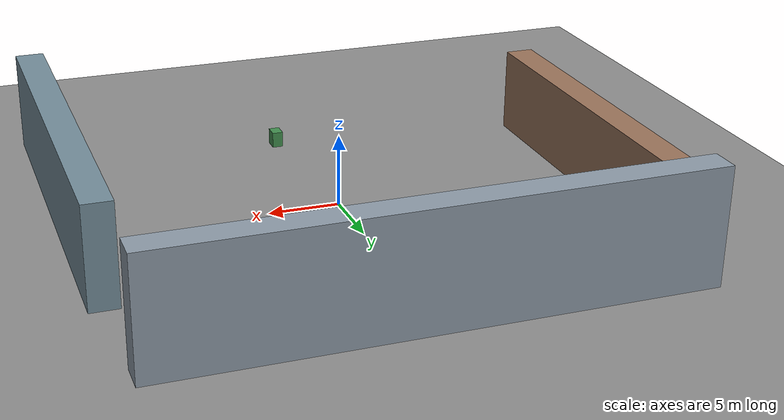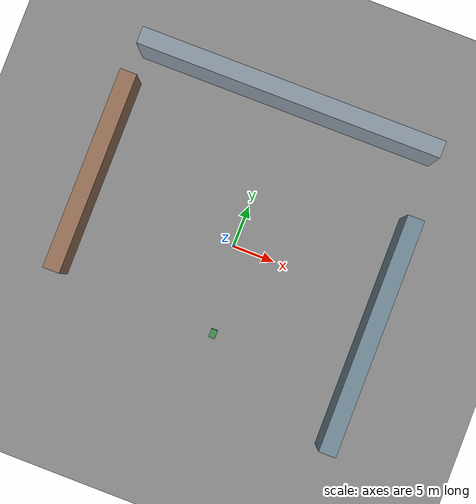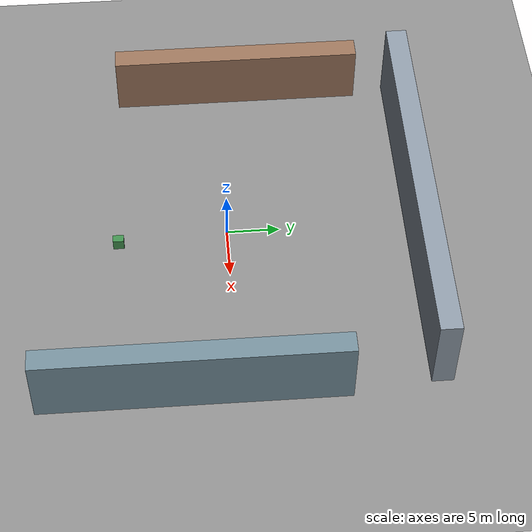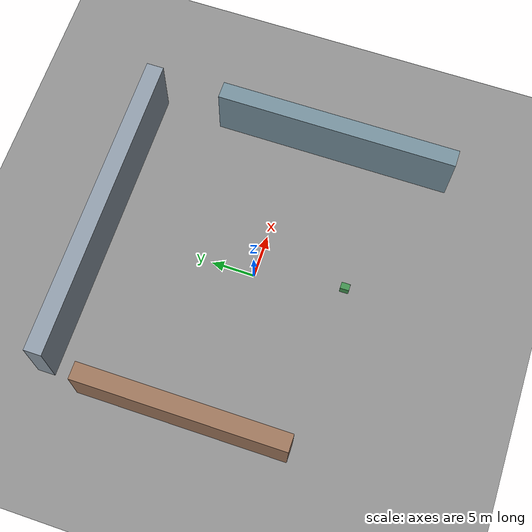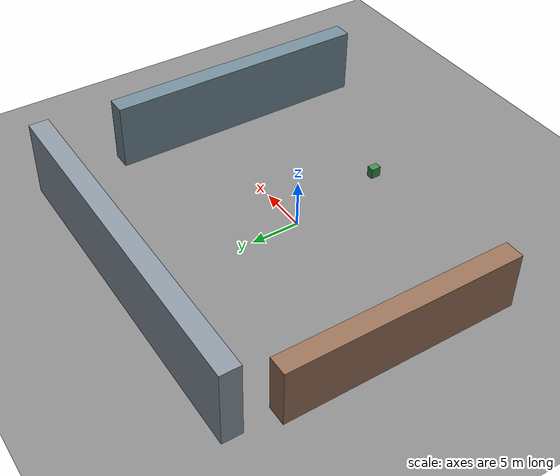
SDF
<?xml version="1.0"?>
<sdf version="1.6">
  <world name="outdoor_normal_low_0">
    <physics name="default_physics" type="ode">
      <real_time_update_rate>1000</real_time_update_rate>
      <max_step_size>0.001</max_step_size>
    </physics>
    <scene>
      <ambient>0.35750000000000004 0.35750000000000004 0.35750000000000004 1</ambient>
      <background>0.08 0.09 0.12 1</background>
      <shadows>true</shadows>
    </scene>
    <light name="sun" type="directional">
      <cast_shadows>true</cast_shadows>
      <pose>0 0 20 0 0 0</pose>
      <diffuse>0.65 0.65 0.65 1.0</diffuse>
      <specular>0.65 0.65 0.65 1.0</specular>
      <direction>-0.5 0.2 -1</direction>
    </light>
    <model name="ground_plane">
      <static>true</static>
      <link name="link">
        <collision name="collision"><geometry><plane><normal>0 0 1</normal><size>100 100</size></plane></geometry></collision>
        <visual name="visual">
          <geometry><plane><normal>0 0 1</normal><size>100 100</size></plane></geometry>
          <material><ambient>0.35 0.35 0.35 1</ambient><diffuse>0.55 0.55 0.55 1</diffuse></material>
        </visual>
      </link>
    </model>

    <model name="building_north">
      <static>true</static>
      <pose>0.0000 18.0000 4.0000 0 0 0</pose>
      <link name="link">
        <collision name="collision"><geometry><box><size>36 2 8</size></box></geometry></collision>
        <visual name="visual">
          <geometry><box><size>36 2 8</size></box></geometry>
          <material><ambient>0.55 0.60 0.65 1</ambient><diffuse>0.55 0.60 0.65 1</diffuse></material>
        </visual>
      </link>
    </model>

    <model name="building_west">
      <static>true</static>
      <pose>-18.0000 2.0000 3.0000 0 0 0</pose>
      <link name="link">
        <collision name="collision"><geometry><box><size>2 24 6</size></box></geometry></collision>
        <visual name="visual">
          <geometry><box><size>2 24 6</size></box></geometry>
          <material><ambient>0.60 0.45 0.35 1</ambient><diffuse>0.60 0.45 0.35 1</diffuse></material>
        </visual>
      </link>
    </model>

    <model name="facade_east">
      <static>true</static>
      <pose>18.0000 -4.0000 3.5000 0 0 0</pose>
      <link name="link">
        <collision name="collision"><geometry><box><size>2 28 7</size></box></geometry></collision>
        <visual name="visual">
          <geometry><box><size>2 28 7</size></box></geometry>
          <material><ambient>0.45 0.55 0.60 1</ambient><diffuse>0.45 0.55 0.60 1</diffuse></material>
        </visual>
      </link>
    </model>

    <model name="outdoor_feature_0">
      <static>true</static>
      <pose>1.4262 -10.2908 1.2289 0 0 0</pose>
      <link name="link">
        <collision name="collision"><geometry><box><size>0.7553857059630709 1.0179592901195131 1.1098478871220525</size></box></geometry></collision>
        <visual name="visual">
          <geometry><box><size>0.7553857059630709 1.0179592901195131 1.1098478871220525</size></box></geometry>
          <material><ambient>0.25 0.55 0.30 1</ambient><diffuse>0.25 0.55 0.30 1</diffuse></material>
        </visual>
      </link>
    </model>
  </world>
</sdf>
